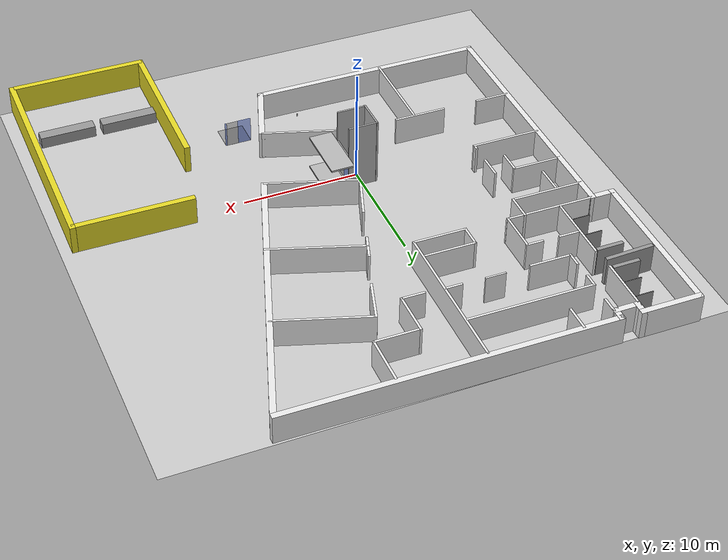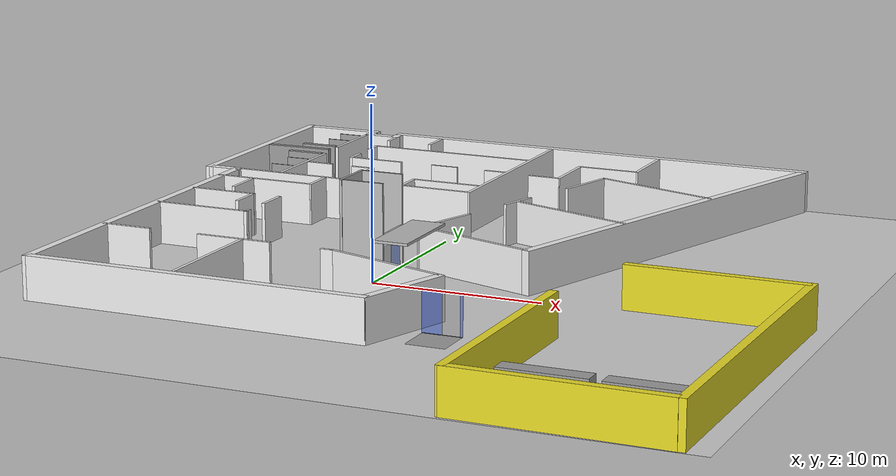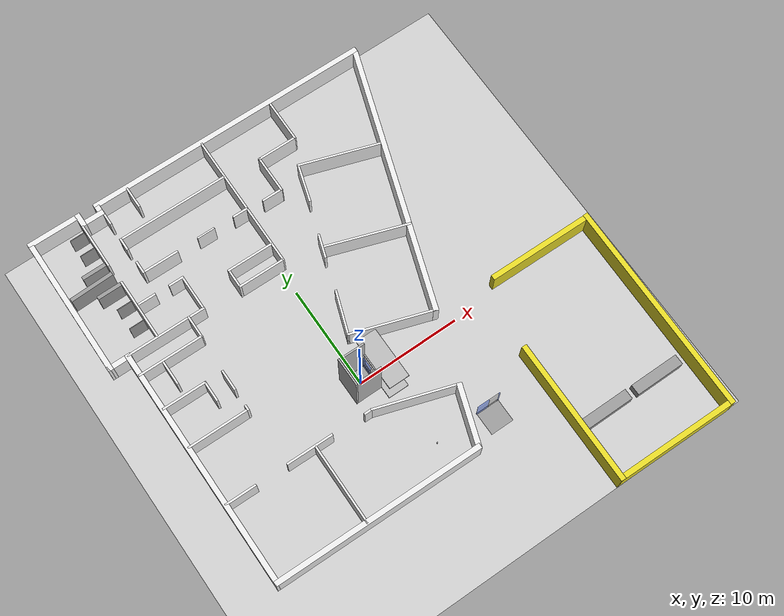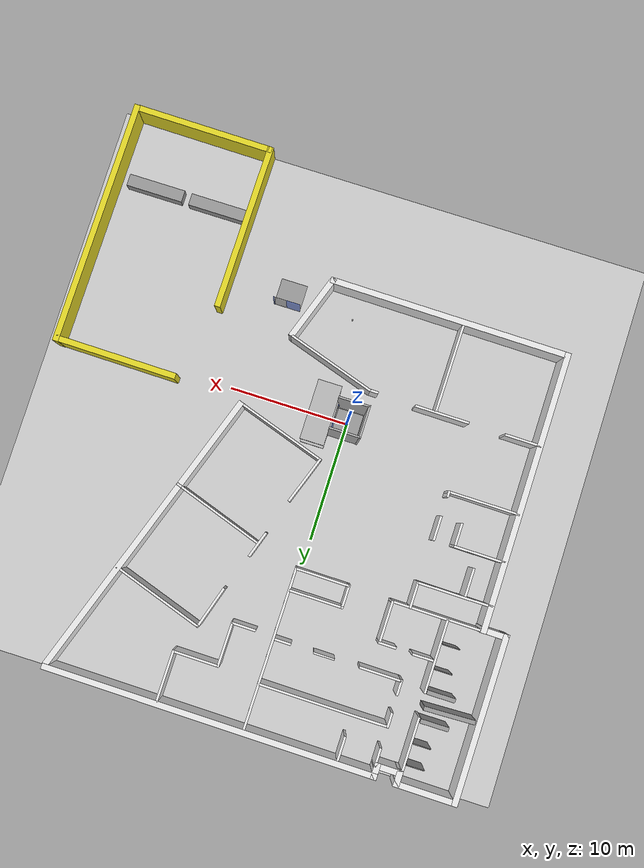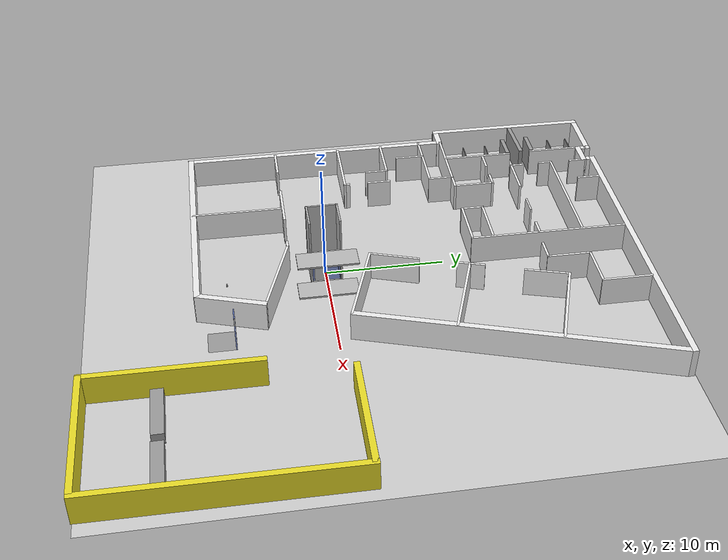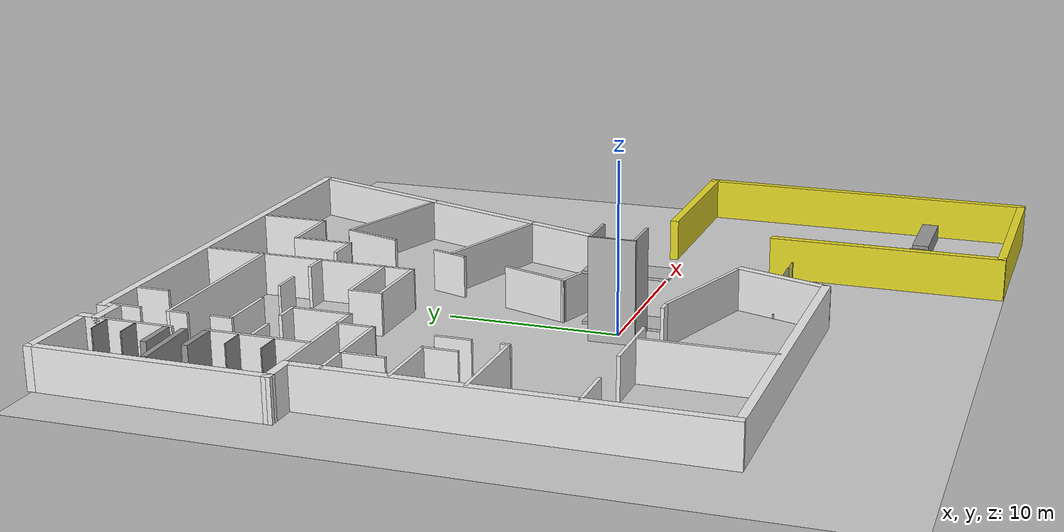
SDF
<sdf version="1.7">
 <world name="default">
  <model name="hospital_wall">
   <pose>3.70516 3.23402 0 0 -0 -1.57977</pose>
   <link name="Wall_0">
    <collision name="Wall_0_Collision">
     <geometry><box><size>27.85 0.5 2.5</size></box></geometry>
     <pose>0 0 1.25 0 -0 0</pose>
    </collision>
    <visual name="Wall_0_Visual">
     <pose>0 0 1.25 0 -0 0</pose>
     <geometry><box><size>27.85 0.5 2.5</size></box></geometry>
     <material>
      <script><uri>file://media/materials/scripts/gazebo.material</uri><name>Gazebo/White</name></script>
      <ambient>1 1 1 1</ambient>
     </material>
     <meta><layer>0</layer></meta>
    </visual>
    <pose>-22.6945 -0.556827 0 0 -0 -1.57078</pose>
   </link>
   <link name="Wall_101">
    <collision name="Wall_101_Collision">
     <geometry><box><size>1.25 0.2 2.5</size></box></geometry>
     <pose>0 0 1.25 0 -0 0</pose>
    </collision>
    <visual name="Wall_101_Visual">
     <pose>0 0 1.25 0 -0 0</pose>
     <geometry><box><size>1.25 0.2 2.5</size></box></geometry>
     <material>
      <script><uri>file://media/materials/scripts/gazebo.material</uri><name>Gazebo/White</name></script>
      <ambient>1 1 1 1</ambient>
     </material>
     <meta><layer>0</layer></meta>
    </visual>
    <pose>-18.1899 -14.0971 0 0 -0 3.14159</pose>
   </link>
   <link name="Wall_103">
    <collision name="Wall_103_Collision">
     <geometry><box><size>1.30009 0.2 2.5</size></box></geometry>
     <pose>0 0 1.25 0 -0 0</pose>
    </collision>
    <visual name="Wall_103_Visual">
     <pose>0 0 1.25 0 -0 0</pose>
     <geometry><box><size>1.30009 0.2 2.5</size></box></geometry>
     <material>
      <script><uri>file://media/materials/scripts/gazebo.material</uri><name>Gazebo/White</name></script>
      <ambient>1 1 1 1</ambient>
     </material>
     <meta><layer>0</layer></meta>
    </visual>
    <pose>-15.5522 -14.0461 0 0 -0 0</pose>
   </link>
   <link name="Wall_105">
    <collision name="Wall_105_Collision">
     <geometry><box><size>3.5 0.2 2.5</size></box></geometry>
     <pose>0 0 1.25 0 -0 0</pose>
    </collision>
    <visual name="Wall_105_Visual">
     <pose>0 0 1.25 0 -0 0</pose>
     <geometry><box><size>3.5 0.2 2.5</size></box></geometry>
     <material>
      <script><uri>file://media/materials/scripts/gazebo.material</uri><name>Gazebo/White</name></script>
      <ambient>1 1 1 1</ambient>
     </material>
     <meta><layer>0</layer></meta>
    </visual>
    <pose>-15.0024 -12.3017 0 0 -0 -1.5708</pose>
   </link>
   <link name="Wall_107">
    <collision name="Wall_107_Collision">
     <geometry><box><size>2.25 0.2 2.5</size></box></geometry>
     <pose>0 0 1.25 0 -0 0</pose>
    </collision>
    <visual name="Wall_107_Visual">
     <pose>0 0 1.25 0 -0 0</pose>
     <geometry><box><size>2.25 0.2 2.5</size></box></geometry>
     <material>
      <script><uri>file://media/materials/scripts/gazebo.material</uri><name>Gazebo/White</name></script>
      <ambient>1 1 1 1</ambient>
     </material>
     <meta><layer>0</layer></meta>
    </visual>
    <pose>-21.5791 -11.151 0 0 -0 3.14159</pose>
   </link>
   <link name="Wall_109">
    <collision name="Wall_109_Collision">
     <geometry><box><size>1.5 0.2 2.5</size></box></geometry>
     <pose>0 0 1.25 0 -0 0</pose>
    </collision>
    <visual name="Wall_109_Visual">
     <pose>0 0 1.25 0 -0 0</pose>
     <geometry><box><size>1.5 0.2 2.5</size></box></geometry>
     <material>
      <script><uri>file://media/materials/scripts/gazebo.material</uri><name>Gazebo/White</name></script>
      <ambient>1 1 1 1</ambient>
     </material>
     <meta><layer>0</layer></meta>
    </visual>
    <pose>-12.697 -12.138 0 0 -0 1.5708</pose>
   </link>
   <link name="Wall_111">
    <collision name="Wall_111_Collision">
     <geometry><box><size>6.05 0.2 2.5</size></box></geometry>
     <pose>0 0 1.25 0 -0 0</pose>
    </collision>
    <visual name="Wall_111_Visual">
     <pose>0 0 1.25 0 -0 0</pose>
     <geometry><box><size>6.05 0.2 2.5</size></box></geometry>
     <material>
      <script><uri>file://media/materials/scripts/gazebo.material</uri><name>Gazebo/White</name></script>
      <ambient>1 1 1 1</ambient>
     </material>
     <meta><layer>0</layer></meta>
    </visual>
    <pose>-12.3324 -16.088 0 0 -0 0</pose>
   </link>
   <link name="Wall_113">
    <collision name="Wall_113_Collision">
     <geometry><box><size>1.75 0.2 2.5</size></box></geometry>
     <pose>0 0 1.25 0 -0 0</pose>
    </collision>
    <visual name="Wall_113_Visual">
     <pose>0 0 1.25 0 -0 0</pose>
     <geometry><box><size>1.75 0.2 2.5</size></box></geometry>
     <material>
      <script><uri>file://media/materials/scripts/gazebo.material</uri><name>Gazebo/White</name></script>
      <ambient>1 1 1 1</ambient>
     </material>
     <meta><layer>0</layer></meta>
    </visual>
    <pose>-12.7232 -15.1011 0 0 -0 -1.5708</pose>
   </link>
   <link name="Wall_115">
    <collision name="Wall_115_Collision">
     <geometry><box><size>4.5 0.2 2.5</size></box></geometry>
     <pose>0 0 1.25 0 -0 0</pose>
    </collision>
    <visual name="Wall_115_Visual">
     <pose>0 0 1.25 0 -0 0</pose>
     <geometry><box><size>4.5 0.2 2.5</size></box></geometry>
     <material>
      <script><uri>file://media/materials/scripts/gazebo.material</uri><name>Gazebo/White</name></script>
      <ambient>1 1 1 1</ambient>
     </material>
     <meta><layer>0</layer></meta>
    </visual>
    <pose>-10.9872 -5.67707 0 0 -0 1.5708</pose>
   </link>
   <link name="Wall_117">
    <collision name="Wall_117_Collision">
     <geometry><box><size>4.5 0.2 2.5</size></box></geometry>
     <pose>0 0 1.25 0 -0 0</pose>
    </collision>
    <visual name="Wall_117_Visual">
     <pose>0 0 1.25 0 -0 0</pose>
     <geometry><box><size>4.5 0.2 2.5</size></box></geometry>
     <material>
      <script><uri>file://media/materials/scripts/gazebo.material</uri><name>Gazebo/White</name></script>
      <ambient>1 1 1 1</ambient>
     </material>
     <meta><layer>0</layer></meta>
    </visual>
    <pose>-9.1948 -5.67532 0 0 -0 1.5708</pose>
   </link>
   <link name="Wall_12">
    <collision name="Wall_12_Collision">
     <geometry><box><size>14 0.5 2.5</size></box></geometry>
     <pose>0 0 1.25 0 -0 0</pose>
    </collision>
    <visual name="Wall_12_Visual">
     <pose>0 0 1.25 0 -0 0</pose>
     <geometry><box><size>14 0.5 2.5</size></box></geometry>
     <material>
      <script><uri>file://media/materials/scripts/gazebo.material</uri><name>Gazebo/White</name></script>
      <ambient>1 1 1 1</ambient>
     </material>
     <meta><layer>0</layer></meta>
    </visual>
    <pose>-15.9442 -20.8921 0 0 -0 0</pose>
   </link>
   <link name="Wall_120">
    <collision name="Wall_120_Collision">
     <geometry><box><size>2 0.2 2.5</size></box></geometry>
     <pose>0 0 1.25 0 -0 0</pose>
    </collision>
    <visual name="Wall_120_Visual">
     <pose>0 0 1.25 0 -0 0</pose>
     <geometry><box><size>2 0.2 2.5</size></box></geometry>
     <material>
      <script><uri>file://media/materials/scripts/gazebo.material</uri><name>Gazebo/White</name></script>
      <ambient>1 1 1 1</ambient>
     </material>
     <meta><layer>0</layer></meta>
    </visual>
    <pose>-10.0892 -7.82789 0 0 -0 0</pose>
   </link>
   <link name="Wall_122">
    <collision name="Wall_122_Collision">
     <geometry><box><size>2.5 0.2 2.5</size></box></geometry>
     <pose>0 0 1.25 0 -0 0</pose>
    </collision>
    <visual name="Wall_122_Visual">
     <pose>0 0 1.25 0 -0 0</pose>
     <geometry><box><size>2.5 0.2 2.5</size></box></geometry>
     <material>
      <script><uri>file://media/materials/scripts/gazebo.material</uri><name>Gazebo/White</name></script>
      <ambient>1 1 1 1</ambient>
     </material>
     <meta><layer>0</layer></meta>
    </visual>
    <pose>-6.02163 -16.8589 0 0 -0 3.14159</pose>
   </link>
   <link name="Wall_124">
    <collision name="Wall_124_Collision">
     <geometry><box><size>4.30001 0.2 2.5</size></box></geometry>
     <pose>0 0 1.25 0 -0 0</pose>
    </collision>
    <visual name="Wall_124_Visual">
     <pose>0 0 1.25 0 -0 0</pose>
     <geometry><box><size>4.30001 0.2 2.5</size></box></geometry>
     <material>
      <script><uri>file://media/materials/scripts/gazebo.material</uri><name>Gazebo/White</name></script>
      <ambient>1 1 1 1</ambient>
     </material>
     <meta><layer>0</layer></meta>
    </visual>
    <pose>-3.60823 -16.9331 0 0 -0 -1.5708</pose>
   </link>
   <link name="Wall_126">
    <collision name="Wall_126_Collision">
     <geometry><box><size>2 0.2 2.5</size></box></geometry>
     <pose>0 0 1.25 0 -0 0</pose>
    </collision>
    <visual name="Wall_126_Visual">
     <pose>0 0 1.25 0 -0 0</pose>
     <geometry><box><size>2 0.2 2.5</size></box></geometry>
     <material>
      <script><uri>file://media/materials/scripts/gazebo.material</uri><name>Gazebo/White</name></script>
      <ambient>1 1 1 1</ambient>
     </material>
     <meta><layer>0</layer></meta>
    </visual>
    <pose>-2.64995 -14.8874 0 0 -0 3.14159</pose>
   </link>
   <link name="Wall_128">
    <collision name="Wall_128_Collision">
     <geometry><box><size>0.55 0.2 2.5</size></box></geometry>
     <pose>0 0 1.25 0 -0 0</pose>
    </collision>
    <visual name="Wall_128_Visual">
     <pose>0 0 1.25 0 -0 0</pose>
     <geometry><box><size>0.55 0.2 2.5</size></box></geometry>
     <material>
      <script><uri>file://media/materials/scripts/gazebo.material</uri><name>Gazebo/White</name></script>
      <ambient>1 1 1 1</ambient>
     </material>
     <meta><layer>0</layer></meta>
    </visual>
    <pose>0.233926 -13.1551 0 0 -0 0</pose>
   </link>
   <link name="Wall_130">
    <collision name="Wall_130_Collision">
     <geometry><box><size>6 0.2 2.5</size></box></geometry>
     <pose>0 0 1.25 0 -0 0</pose>
    </collision>
    <visual name="Wall_130_Visual">
     <pose>0 0 1.25 0 -0 0</pose>
     <geometry><box><size>6 0.2 2.5</size></box></geometry>
     <material>
      <script><uri>file://media/materials/scripts/gazebo.material</uri><name>Gazebo/White</name></script>
      <ambient>1 1 1 1</ambient>
     </material>
     <meta><layer>0</layer></meta>
    </visual>
    <pose>0.407767 -16.0541 0 0 -0 1.5708</pose>
   </link>
   <link name="Wall_132">
    <collision name="Wall_132_Collision">
     <geometry><box><size>4.25 0.2 2.5</size></box></geometry>
     <pose>0 0 1.25 0 -0 0</pose>
    </collision>
    <visual name="Wall_132_Visual">
     <pose>0 0 1.25 0 -0 0</pose>
     <geometry><box><size>4.25 0.2 2.5</size></box></geometry>
     <material>
      <script><uri>file://media/materials/scripts/gazebo.material</uri><name>Gazebo/White</name></script>
      <ambient>1 1 1 1</ambient>
     </material>
     <meta><layer>0</layer></meta>
    </visual>
    <pose>-20.4132 3.82393 0 0 -0 0</pose>
   </link>
   <link name="Wall_134">
    <collision name="Wall_134_Collision">
     <geometry><box><size>3.75 0.2 2.5</size></box></geometry>
     <pose>0 0 1.25 0 -0 0</pose>
    </collision>
    <visual name="Wall_134_Visual">
     <pose>0 0 1.25 0 -0 0</pose>
     <geometry><box><size>3.75 0.2 2.5</size></box></geometry>
     <material>
      <script><uri>file://media/materials/scripts/gazebo.material</uri><name>Gazebo/White</name></script>
      <ambient>1 1 1 1</ambient>
     </material>
     <meta><layer>0</layer></meta>
    </visual>
    <pose>-18.387 1.94161 0 0 -0 1.5708</pose>
   </link>
   <link name="Wall_136">
    <collision name="Wall_136_Collision">
     <geometry><box><size>3.75 0.2 2.5</size></box></geometry>
     <pose>0 0 1.25 0 -0 0</pose>
    </collision>
    <visual name="Wall_136_Visual">
     <pose>0 0 1.25 0 -0 0</pose>
     <geometry><box><size>3.75 0.2 2.5</size></box></geometry>
     <material>
      <script><uri>file://media/materials/scripts/gazebo.material</uri><name>Gazebo/White</name></script>
      <ambient>1 1 1 1</ambient>
     </material>
     <meta><layer>0</layer></meta>
    </visual>
    <pose>-16.6135 0.087292 0 0 -0 3.14159</pose>
   </link>
   <link name="Wall_138">
    <collision name="Wall_138_Collision">
     <geometry><box><size>2 0.2 2.5</size></box></geometry>
     <pose>0 0 1.25 0 -0 0</pose>
    </collision>
    <visual name="Wall_138_Visual">
     <pose>0 0 1.25 0 -0 0</pose>
     <geometry><box><size>2 0.2 2.5</size></box></geometry>
     <material>
      <script><uri>file://media/materials/scripts/gazebo.material</uri><name>Gazebo/White</name></script>
      <ambient>1 1 1 1</ambient>
     </material>
     <meta><layer>0</layer></meta>
    </visual>
    <pose>-14.8374 -0.881729 0 0 -0 1.5708</pose>
   </link>
   <link name="Wall_15">
    <collision name="Wall_15_Collision">
     <geometry><box><size>2.3504 0.5 2.5</size></box></geometry>
     <pose>0 0 1.25 0 -0 0</pose>
    </collision>
    <visual name="Wall_15_Visual">
     <pose>0 0 1.25 0 -0 0</pose>
     <geometry><box><size>2.3504 0.5 2.5</size></box></geometry>
     <material>
      <script><uri>file://media/materials/scripts/gazebo.material</uri><name>Gazebo/White</name></script>
      <ambient>1 1 1 1</ambient>
     </material>
     <meta><layer>0</layer></meta>
    </visual>
    <pose>-9.19703 -19.9669 0 0 -0 1.57382</pose>
   </link>
   <link name="Wall_17">
    <collision name="Wall_17_Collision">
     <geometry><box><size>23.6058 0.5 2.5</size></box></geometry>
     <pose>0 0 1.25 0 -0 0</pose>
    </collision>
    <visual name="Wall_17_Visual">
     <pose>0 0 1.25 0 -0 0</pose>
     <geometry><box><size>23.6058 0.5 2.5</size></box></geometry>
     <material>
      <script><uri>file://media/materials/scripts/gazebo.material</uri><name>Gazebo/White</name></script>
      <ambient>1 1 1 1</ambient>
     </material>
     <meta><layer>0</layer></meta>
    </visual>
    <pose>2.35297 -19.0214 0 0 -0 0.004195</pose>
   </link>
   <link name="Wall_19">
    <collision name="Wall_19_Collision">
     <geometry><box><size>20.4027 0.5 2.5</size></box></geometry>
     <pose>0 0 1.25 0 -0 0</pose>
    </collision>
    <visual name="Wall_19_Visual">
     <pose>0 0 1.25 0 -0 0</pose>
     <geometry><box><size>20.4027 0.5 2.5</size></box></geometry>
     <material>
      <script><uri>file://media/materials/scripts/gazebo.material</uri><name>Gazebo/White</name></script>
      <ambient>1 1 1 1</ambient>
     </material>
     <meta><layer>0</layer></meta>
    </visual>
    <pose>13.9058 -8.99341 0 0 -0 1.5708</pose>
   </link>
   <link name="Wall_2">
    <collision name="Wall_2_Collision">
     <geometry><box><size>1.34953 0.5 2.5</size></box></geometry>
     <pose>0 0 1.25 0 -0 0</pose>
    </collision>
    <visual name="Wall_2_Visual">
     <pose>0 0 1.25 0 -0 0</pose>
     <geometry><box><size>1.34953 0.5 2.5</size></box></geometry>
     <material>
      <script><uri>file://media/materials/scripts/gazebo.material</uri><name>Gazebo/White</name></script>
      <ambient>1 1 1 1</ambient>
     </material>
     <meta><layer>0</layer></meta>
    </visual>
    <pose>-22.2692 -14.2321 0 0 -0 0</pose>
   </link>
   <link name="Wall_21">
    <collision name="Wall_21_Collision">
     <geometry><box><size>25.994 0.5 2.5</size></box></geometry>
     <pose>0 0 1.25 0 -0 0</pose>
    </collision>
    <visual name="Wall_21_Visual">
     <pose>0 0 1.25 0 -0 0</pose>
     <geometry><box><size>25.994 0.5 2.5</size></box></geometry>
     <material>
      <script><uri>file://media/materials/scripts/gazebo.material</uri><name>Gazebo/White</name></script>
      <ambient>1 1 1 1</ambient>
     </material>
     <meta><layer>0</layer></meta>
    </visual>
    <pose>-10.1882 9.03243 0 0 -0 -0.321217</pose>
   </link>
   <link name="Wall_23">
    <collision name="Wall_23_Collision">
     <geometry><box><size>5.92015 0.5 2.5</size></box></geometry>
     <pose>0 0 1.25 0 -0 0</pose>
    </collision>
    <visual name="Wall_23_Visual">
     <pose>0 0 1.25 0 -0 0</pose>
     <geometry><box><size>5.92015 0.5 2.5</size></box></geometry>
     <material>
      <script><uri>file://media/materials/scripts/gazebo.material</uri><name>Gazebo/White</name></script>
      <ambient>1 1 1 1</ambient>
     </material>
     <meta><layer>0</layer></meta>
    </visual>
    <pose>11.2768 1.89793 0 0 -0 -0.322917</pose>
   </link>
   <link name="Wall_25">
    <collision name="Wall_25_Collision">
     <geometry><box><size>10.25 0.5 2.5</size></box></geometry>
     <pose>0 0 1.25 0 -0 0</pose>
    </collision>
    <visual name="Wall_25_Visual">
     <pose>0 0 1.25 0 -0 0</pose>
     <geometry><box><size>10.25 0.5 2.5</size></box></geometry>
     <material>
      <script><uri>file://media/materials/scripts/gazebo.material</uri><name>Gazebo/Yellow</name></script>
      <ambient>1 1 1 1</ambient>
     </material>
     <meta><layer>0</layer></meta>
    </visual>
    <pose>2.44213 15.8139 0 0 -0 1.5708</pose>
   </link>
   <link name="Wall_29">
    <collision name="Wall_29_Collision">
     <geometry><box><size>14 0.5 2.5</size></box></geometry>
     <pose>0 0 1.25 0 -0 0</pose>
    </collision>
    <visual name="Wall_29_Visual">
     <pose>0 0 1.25 0 -0 0</pose>
     <geometry><box><size>14 0.5 2.5</size></box></geometry>
     <material>
      <script><uri>file://media/materials/scripts/gazebo.material</uri><name>Gazebo/Yellow</name></script>
      <ambient>1 1 1 1</ambient>
     </material>
     <meta><layer>0</layer></meta>
    </visual>
    <pose>15.9259 9.2975 0 0 -0 0</pose>
   </link>
   <link name="Wall_31">
    <collision name="Wall_31_Collision">
     <geometry><box><size>11.6 0.5 2.5</size></box></geometry>
     <pose>0 0 1.25 0 -0 0</pose>
    </collision>
    <visual name="Wall_31_Visual">
     <pose>0 0 1.25 0 -0 0</pose>
     <geometry><box><size>11.6 0.5 2.5</size></box></geometry>
     <material>
      <script><uri>file://media/materials/scripts/gazebo.material</uri><name>Gazebo/Yellow</name></script>
      <ambient>1 1 1 1</ambient>
     </material>
     <meta><layer>0</layer></meta>
    </visual>
    <pose>22.6947 14.9589 0 0 -0 1.5708</pose>
   </link>
   <link name="Wall_33">
    <collision name="Wall_33_Collision">
     <geometry><box><size>20.75 0.5 2.5</size></box></geometry>
     <pose>0 0 1.25 0 -0 0</pose>
    </collision>
    <visual name="Wall_33_Visual">
     <pose>0 0 1.25 0 -0 0</pose>
     <geometry><box><size>20.75 0.5 2.5</size></box></geometry>
     <material>
      <script><uri>file://media/materials/scripts/gazebo.material</uri><name>Gazebo/Yellow</name></script>
      <ambient>1 1 1 1</ambient>
     </material>
     <meta><layer>0</layer></meta>
    </visual>
    <pose>12.5443 20.8928 0 0 -0 3.14159</pose>
   </link>
   <link name="Wall_36">
    <collision name="Wall_36_Collision">
     <geometry><box><size>8.02379 0.2 2.5</size></box></geometry>
     <pose>0 0 1.25 0 -0 0</pose>
    </collision>
    <visual name="Wall_36_Visual">
     <pose>0 0 1.25 0 -0 0</pose>
     <geometry><box><size>8.02379 0.2 2.5</size></box></geometry>
     <material>
      <script><uri>file://media/materials/scripts/gazebo.material</uri><name>Gazebo/White</name></script>
      <ambient>1 1 1 1</ambient>
     </material>
     <meta><layer>0</layer></meta>
    </visual>
    <pose>0.840579 1.20633 0 0 -0 1.26174</pose>
   </link>
   <link name="Wall_38">
    <collision name="Wall_38_Collision">
     <geometry><box><size>7.84014 0.2 2.5</size></box></geometry>
     <pose>0 0 1.25 0 -0 0</pose>
    </collision>
    <visual name="Wall_38_Visual">
     <pose>0 0 1.25 0 -0 0</pose>
     <geometry><box><size>7.84014 0.2 2.5</size></box></geometry>
     <material>
      <script><uri>file://media/materials/scripts/gazebo.material</uri><name>Gazebo/White</name></script>
      <ambient>1 1 1 1</ambient>
     </material>
     <meta><layer>0</layer></meta>
    </visual>
    <pose>7.39677 -0.912771 0 0 -0 1.26775</pose>
   </link>
   <link name="Wall_40">
    <collision name="Wall_40_Collision">
     <geometry><box><size>0.75 0.2 2.5</size></box></geometry>
     <pose>0 0 1.25 0 -0 0</pose>
    </collision>
    <visual name="Wall_40_Visual">
     <pose>0 0 1.25 0 -0 0</pose>
     <geometry><box><size>0.75 0.2 2.5</size></box></geometry>
     <material>
      <script><uri>file://media/materials/scripts/gazebo.material</uri><name>Gazebo/White</name></script>
      <ambient>1 1 1 1</ambient>
     </material>
     <meta><layer>0</layer></meta>
    </visual>
    <pose>6.25677 -4.94668 0 0 -0 1.5708</pose>
   </link>
   <link name="Wall_42">
    <collision name="Wall_42_Collision">
     <geometry><box><size>4.54982 0.2 2.5</size></box></geometry>
     <pose>0 0 1.25 0 -0 0</pose>
    </collision>
    <visual name="Wall_42_Visual">
     <pose>0 0 1.25 0 -0 0</pose>
     <geometry><box><size>4.54982 0.2 2.5</size></box></geometry>
     <material>
      <script><uri>file://media/materials/scripts/gazebo.material</uri><name>Gazebo/White</name></script>
      <ambient>1 1 1 1</ambient>
     </material>
     <meta><layer>0</layer></meta>
    </visual>
    <pose>6.18977 -10.7381 0 0 -0 -1.5708</pose>
   </link>
   <link name="Wall_45">
    <collision name="Wall_45_Collision">
     <geometry><box><size>3.05045 0.2 2.5</size></box></geometry>
     <pose>0 0 1.25 0 -0 0</pose>
    </collision>
    <visual name="Wall_45_Visual">
     <pose>0 0 1.25 0 -0 0</pose>
     <geometry><box><size>3.05045 0.2 2.5</size></box></geometry>
     <material>
      <script><uri>file://media/materials/scripts/gazebo.material</uri><name>Gazebo/White</name></script>
      <ambient>1 1 1 1</ambient>
     </material>
     <meta><layer>0</layer></meta>
    </visual>
    <pose>6.19877 -17.5651 0 0 -0 -1.5708</pose>
   </link>
   <link name="Wall_47">
    <collision name="Wall_47_Collision">
     <geometry><box><size>7.79995 0.2 2.5</size></box></geometry>
     <pose>0 0 1.25 0 -0 0</pose>
    </collision>
    <visual name="Wall_47_Visual">
     <pose>0 0 1.25 0 -0 0</pose>
     <geometry><box><size>7.79995 0.2 2.5</size></box></geometry>
     <material>
      <script><uri>file://media/materials/scripts/gazebo.material</uri><name>Gazebo/White</name></script>
      <ambient>1 1 1 1</ambient>
     </material>
     <meta><layer>0</layer></meta>
    </visual>
    <pose>10.1328 -10.2061 0 0 -0 0</pose>
   </link>
   <link name="Wall_5">
    <collision name="Wall_5_Collision">
     <geometry><box><size>2.35 0.5 2.5</size></box></geometry>
     <pose>0 0 1.25 0 -0 0</pose>
    </collision>
    <visual name="Wall_5_Visual">
     <pose>0 0 1.25 0 -0 0</pose>
     <geometry><box><size>2.35 0.5 2.5</size></box></geometry>
     <material>
      <script><uri>file://media/materials/scripts/gazebo.material</uri><name>Gazebo/White</name></script>
      <ambient>1 1 1 1</ambient>
     </material>
     <meta><layer>0</layer></meta>
    </visual>
    <pose>-21.8442 -15.1571 0 0 -0 -1.5708</pose>
   </link>
   <link name="Wall_58">
    <collision name="Wall_58_Collision">
     <geometry><box><size>4.27097 0.2 2.5</size></box></geometry>
     <pose>0 0 1.25 0 -0 0</pose>
    </collision>
    <visual name="Wall_58_Visual">
     <pose>0 0 1.25 0 -0 0</pose>
     <geometry><box><size>4.27097 0.2 2.5</size></box></geometry>
     <material>
      <script><uri>file://media/materials/scripts/gazebo.material</uri><name>Gazebo/White</name></script>
      <ambient>1 1 1 1</ambient>
     </material>
     <meta><layer>0</layer></meta>
    </visual>
    <pose>-2.27423 -1.85857 0 0 -0 -0.330994</pose>
   </link>
   <link name="Wall_60">
    <collision name="Wall_60_Collision">
     <geometry><box><size>2.33146 0.2 2.5</size></box></geometry>
     <pose>0 0 1.25 0 -0 0</pose>
    </collision>
    <visual name="Wall_60_Visual">
     <pose>0 0 1.25 0 -0 0</pose>
     <geometry><box><size>2.33146 0.2 2.5</size></box></geometry>
     <material>
      <script><uri>file://media/materials/scripts/gazebo.material</uri><name>Gazebo/White</name></script>
      <ambient>1 1 1 1</ambient>
     </material>
     <meta><layer>0</layer></meta>
    </visual>
    <pose>-8.34323 0.115928 0 0 -0 -0.312849</pose>
   </link>
   <link name="Wall_65">
    <collision name="Wall_65_Collision">
     <geometry><box><size>8.18103 0.2 2.5</size></box></geometry>
     <pose>0 0 1.25 0 -0 0</pose>
    </collision>
    <visual name="Wall_65_Visual">
     <pose>0 0 1.25 0 -0 0</pose>
     <geometry><box><size>8.18103 0.2 2.5</size></box></geometry>
     <material>
      <script><uri>file://media/materials/scripts/gazebo.material</uri><name>Gazebo/White</name></script>
      <ambient>1 1 1 1</ambient>
     </material>
     <meta><layer>0</layer></meta>
    </visual>
    <pose>-6.99923 3.88693 0 0 -0 1.25325</pose>
   </link>
   <link name="Wall_68">
    <collision name="Wall_68_Collision">
     <geometry><box><size>8.11404 0.2 2.5</size></box></geometry>
     <pose>0 0 1.25 0 -0 0</pose>
    </collision>
    <visual name="Wall_68_Visual">
     <pose>0 0 1.25 0 -0 0</pose>
     <geometry><box><size>8.11404 0.2 2.5</size></box></geometry>
     <material>
      <script><uri>file://media/materials/scripts/gazebo.material</uri><name>Gazebo/White</name></script>
      <ambient>1 1 1 1</ambient>
     </material>
     <meta><layer>0</layer></meta>
    </visual>
    <pose>-14.7317 6.38193 0 0 -0 1.25964</pose>
   </link>
   <link name="Wall_7">
    <collision name="Wall_7_Collision">
     <geometry><box><size>1.35 0.5 2.5</size></box></geometry>
     <pose>0 0 1.25 0 -0 0</pose>
    </collision>
    <visual name="Wall_7_Visual">
     <pose>0 0 1.25 0 -0 0</pose>
     <geometry><box><size>1.35 0.5 2.5</size></box></geometry>
     <material>
      <script><uri>file://media/materials/scripts/gazebo.material</uri><name>Gazebo/White</name></script>
      <ambient>1 1 1 1</ambient>
     </material>
     <meta><layer>0</layer></meta>
    </visual>
    <pose>-22.2692 -16.0821 0 0 -0 3.14159</pose>
   </link>
   <link name="Wall_70">
    <collision name="Wall_70_Collision">
     <geometry><box><size>3.72528 0.2 2.5</size></box></geometry>
     <pose>0 0 1.25 0 -0 0</pose>
    </collision>
    <visual name="Wall_70_Visual">
     <pose>0 0 1.25 0 -0 0</pose>
     <geometry><box><size>3.72528 0.2 2.5</size></box></geometry>
     <material>
      <script><uri>file://media/materials/scripts/gazebo.material</uri><name>Gazebo/White</name></script>
      <ambient>1 1 1 1</ambient>
     </material>
     <meta><layer>0</layer></meta>
    </visual>
    <pose>-14.2362 2.09543 0 0 -0 -0.292055</pose>
   </link>
   <link name="Wall_72">
    <collision name="Wall_72_Collision">
     <geometry><box><size>6.25 0.2 2.5</size></box></geometry>
     <pose>0 0 1.25 0 -0 0</pose>
    </collision>
    <visual name="Wall_72_Visual">
     <pose>0 0 1.25 0 -0 0</pose>
     <geometry><box><size>6.25 0.2 2.5</size></box></geometry>
     <material>
      <script><uri>file://media/materials/scripts/gazebo.material</uri><name>Gazebo/White</name></script>
      <ambient>1 1 1 1</ambient>
     </material>
     <meta><layer>0</layer></meta>
    </visual>
    <pose>-7.24323 -16.0931 0 0 -0 -1.5708</pose>
   </link>
   <link name="Wall_77">
    <collision name="Wall_77_Collision">
     <geometry><box><size>6.25 0.2 2.5</size></box></geometry>
     <pose>0 0 1.25 0 -0 0</pose>
    </collision>
    <visual name="Wall_77_Visual">
     <pose>0 0 1.25 0 -0 0</pose>
     <geometry><box><size>6.25 0.2 2.5</size></box></geometry>
     <material>
      <script><uri>file://media/materials/scripts/gazebo.material</uri><name>Gazebo/White</name></script>
      <ambient>1 1 1 1</ambient>
     </material>
     <meta><layer>0</layer></meta>
    </visual>
    <pose>-9.29023 -16.0101 0 0 -0 1.5708</pose>
   </link>
   <link name="Wall_81">
    <collision name="Wall_81_Collision">
     <geometry><box><size>2.25 0.2 2.5</size></box></geometry>
     <pose>0 0 1.25 0 -0 0</pose>
    </collision>
    <visual name="Wall_81_Visual">
     <pose>0 0 1.25 0 -0 0</pose>
     <geometry><box><size>2.25 0.2 2.5</size></box></geometry>
     <material>
      <script><uri>file://media/materials/scripts/gazebo.material</uri><name>Gazebo/White</name></script>
      <ambient>1 1 1 1</ambient>
     </material>
     <meta><layer>0</layer></meta>
    </visual>
    <pose>-8.2697 -12.9678 0 0 -0 0</pose>
   </link>
   <link name="Wall_83">
    <collision name="Wall_83_Collision">
     <geometry><box><size>2.04976 0.2 2.5</size></box></geometry>
     <pose>0 0 1.25 0 -0 0</pose>
    </collision>
    <visual name="Wall_83_Visual">
     <pose>0 0 1.25 0 -0 0</pose>
     <geometry><box><size>2.04976 0.2 2.5</size></box></geometry>
     <material>
      <script><uri>file://media/materials/scripts/gazebo.material</uri><name>Gazebo/White</name></script>
      <ambient>1 1 1 1</ambient>
     </material>
     <meta><layer>0</layer></meta>
    </visual>
    <pose>-2.65423 -13.1321 0 0 -0 0</pose>
   </link>
   <link name="Wall_85">
    <collision name="Wall_85_Collision">
     <geometry><box><size>1.55 0.2 2.5</size></box></geometry>
     <pose>0 0 1.25 0 -0 0</pose>
    </collision>
    <visual name="Wall_85_Visual">
     <pose>0 0 1.25 0 -0 0</pose>
     <geometry><box><size>1.55 0.2 2.5</size></box></geometry>
     <material>
      <script><uri>file://media/materials/scripts/gazebo.material</uri><name>Gazebo/White</name></script>
      <ambient>1 1 1 1</ambient>
     </material>
     <meta><layer>0</layer></meta>
    </visual>
    <pose>-9.28482 -12.1541 0 0 -0 -1.5708</pose>
   </link>
   <link name="Wall_87">
    <collision name="Wall_87_Collision">
     <geometry><box><size>3.5 0.2 2.5</size></box></geometry>
     <pose>0 0 1.25 0 -0 0</pose>
    </collision>
    <visual name="Wall_87_Visual">
     <pose>0 0 1.25 0 -0 0</pose>
     <geometry><box><size>3.5 0.2 2.5</size></box></geometry>
     <material>
      <script><uri>file://media/materials/scripts/gazebo.material</uri><name>Gazebo/White</name></script>
      <ambient>1 1 1 1</ambient>
     </material>
     <meta><layer>0</layer></meta>
    </visual>
    <pose>-10.9541 -11.492 0 0 -0 0</pose>
   </link>
   <link name="Wall_89">
    <collision name="Wall_89_Collision">
     <geometry><box><size>4.5 0.2 2.5</size></box></geometry>
     <pose>0 0 1.25 0 -0 0</pose>
    </collision>
    <visual name="Wall_89_Visual">
     <pose>0 0 1.25 0 -0 0</pose>
     <geometry><box><size>4.5 0.2 2.5</size></box></geometry>
     <material>
      <script><uri>file://media/materials/scripts/gazebo.material</uri><name>Gazebo/White</name></script>
      <ambient>1 1 1 1</ambient>
     </material>
     <meta><layer>0</layer></meta>
    </visual>
    <pose>-19.4706 -16.2291 0 0 -0 0</pose>
   </link>
   <link name="Wall_9">
    <collision name="Wall_9_Collision">
     <geometry><box><size>5.31023 0.5 2.5</size></box></geometry>
     <pose>0 0 1.25 0 -0 0</pose>
    </collision>
    <visual name="Wall_9_Visual">
     <pose>0 0 1.25 0 -0 0</pose>
     <geometry><box><size>5.31023 0.5 2.5</size></box></geometry>
     <material>
      <script><uri>file://media/materials/scripts/gazebo.material</uri><name>Gazebo/White</name></script>
      <ambient>1 1 1 1</ambient>
     </material>
     <meta><layer>0</layer></meta>
    </visual>
    <pose>-22.6942 -18.4871 0 0 -0 -1.5708</pose>
   </link>
   <link name="Wall_91">
    <collision name="Wall_91_Collision">
     <geometry><box><size>13.5 0.2 2.5</size></box></geometry>
     <pose>0 0 1.25 0 -0 0</pose>
    </collision>
    <visual name="Wall_91_Visual">
     <pose>0 0 1.25 0 -0 0</pose>
     <geometry><box><size>13.5 0.2 2.5</size></box></geometry>
     <material>
      <script><uri>file://media/materials/scripts/gazebo.material</uri><name>Gazebo/White</name></script>
      <ambient>1 1 1 1</ambient>
     </material>
     <meta><layer>0</layer></meta>
    </visual>
    <pose>-15.8452 -3.39907 0 0 -0 0</pose>
   </link>
   <link name="Wall_93">
    <collision name="Wall_93_Collision">
     <geometry><box><size>1.5 0.2 2.5</size></box></geometry>
     <pose>0 0 1.25 0 -0 0</pose>
    </collision>
    <visual name="Wall_93_Visual">
     <pose>0 0 1.25 0 -0 0</pose>
     <geometry><box><size>1.5 0.2 2.5</size></box></geometry>
     <material>
      <script><uri>file://media/materials/scripts/gazebo.material</uri><name>Gazebo/White</name></script>
      <ambient>1 1 1 1</ambient>
     </material>
     <meta><layer>0</layer></meta>
    </visual>
    <pose>-14.9992 -4.12907 0 0 -0 1.5708</pose>
   </link>
   <link name="Wall_95">
    <collision name="Wall_95_Collision">
     <geometry><box><size>1.75 0.15 2.5</size></box></geometry>
     <pose>0 0 1.25 0 -0 0</pose>
    </collision>
    <visual name="Wall_95_Visual">
     <pose>0 0 1.25 0 -0 0</pose>
     <geometry><box><size>1.75 0.15 2.5</size></box></geometry>
     <material>
      <script><uri>file://media/materials/scripts/gazebo.material</uri><name>Gazebo/White</name></script>
      <ambient>1 1 1 1</ambient>
     </material>
     <meta><layer>0</layer></meta>
    </visual>
    <pose>-15.0568 -7.62987 0 0 -0 -1.5708</pose>
   </link>
   <link name="Wall_97">
    <collision name="Wall_97_Collision">
     <geometry><box><size>10.75 0.2 2.5</size></box></geometry>
     <pose>0 0 1.25 0 -0 0</pose>
    </collision>
    <visual name="Wall_97_Visual">
     <pose>0 0 1.25 0 -0 0</pose>
     <geometry><box><size>10.75 0.2 2.5</size></box></geometry>
     <material>
      <script><uri>file://media/materials/scripts/gazebo.material</uri><name>Gazebo/White</name></script>
      <ambient>1 1 1 1</ambient>
     </material>
     <meta><layer>0</layer></meta>
    </visual>
    <pose>-18.7202 -8.82507 0 0 -0 -1.5708</pose>
   </link>
   <link name="Wall_99">
    <collision name="Wall_99_Collision">
     <geometry><box><size>1.5 0.2 2.5</size></box></geometry>
     <pose>0 0 1.25 0 -0 0</pose>
    </collision>
    <visual name="Wall_99_Visual">
     <pose>0 0 1.25 0 -0 0</pose>
     <geometry><box><size>1.5 0.2 2.5</size></box></geometry>
     <material>
      <script><uri>file://media/materials/scripts/gazebo.material</uri><name>Gazebo/White</name></script>
      <ambient>1 1 1 1</ambient>
     </material>
     <meta><layer>0</layer></meta>
    </visual>
    <pose>-21.1918 -14.0784 0 0 -0 3.14159</pose>
   </link>
   <static>1</static>
  </model>
  <model name="my_ground_plane">
   <static>1</static>
   <link name="link">
    <collision name="collision">
     <geometry><plane><normal>0 0 1</normal><size>6 6</size></plane></geometry>
     <surface><friction><ode><mu2>1</mu2><mu1>1</mu1></ode></friction></surface>
    </collision>
    <visual name="visual">
     <geometry><plane><normal>0 0 1</normal><size>46 46</size></plane></geometry>
     <cast_shadows>0</cast_shadows>
     <material>
      <script>
       <uri>model://my_ground_plane/materials/scripts</uri>
       <uri>model://my_ground_plane/materials/textures</uri>
       <name>MyGroundPlane/Texture1</name>
      </script>
     </material>
    </visual>
   </link>
   <pose>2.78178 3.19727 0 0 -0 0</pose>
  </model>
  <model name="beer">
   <link name="link">
    <pose>0 0 0.115 0 -0 0</pose>
    <inertial>
     <mass>0.39</mass>
     <inertia><ixx>0.00058</ixx><ixy>0</ixy><ixz>0</ixz><iyy>0.00058</iyy><iyz>0</iyz><izz>0.00019</izz></inertia>
    </inertial>
    <collision name="collision">
     <geometry><cylinder><radius>0.055</radius><length>0.23</length></cylinder></geometry>
    </collision>
    <visual name="visual">
     <geometry><cylinder><radius>0.055</radius><length>0.23</length></cylinder></geometry>
     <material>
      <script>
       <uri>model://beer/materials/scripts</uri>
       <uri>model://beer/materials/textures</uri>
       <name>Beer/Diffuse</name>
      </script>
     </material>
    </visual>
   </link>
   <pose>2.13177 -8.25354 1.2 -2.1e-05 -3.7e-05 -0.000217</pose>
  </model>
  <model name="unit_box_clone_clone_0_clone">
   <pose>-13.2323 22.7198 1.26094 -4e-06 2e-06 0.000683</pose>
   <link name="link">
    <inertial>
     <mass>1</mass>
     <inertia>
      <ixx>0.166667</ixx>
      <ixy>0</ixy>
      <ixz>0</ixz>
      <iyy>0.166667</iyy>
      <iyz>0</iyz>
      <izz>0.166667</izz>
     </inertia>
    </inertial>
    <collision name="collision"><geometry><box><size>1.45302 0.065809 2.52188</size></box></geometry></collision>
    <visual name="visual">
     <geometry><box><size>1.45302 0.065809 2.52188</size></box></geometry>
     <material>
      <script><name>Gazebo/Grey</name><uri>file://media/materials/scripts/gazebo.material</uri></script>
     </material>
    </visual>
   </link>
  </model>
  <model name="unit_box_clone_clone_0_clone_clone_1">
   <pose>-13.2378 24.4436 1.26094 -4e-06 -3e-06 0.000748</pose>
   <link name="link">
    <inertial>
     <mass>1</mass>
     <inertia>
      <ixx>0.166667</ixx>
      <ixy>0</ixy>
      <ixz>0</ixz>
      <iyy>0.166667</iyy>
      <iyz>0</iyz>
      <izz>0.166667</izz>
     </inertia>
    </inertial>
    <collision name="collision"><geometry><box><size>1.45302 0.065809 2.52188</size></box></geometry></collision>
    <visual name="visual">
     <geometry><box><size>1.45302 0.065809 2.52188</size></box></geometry>
     <material>
      <script><name>Gazebo/Grey</name><uri>file://media/materials/scripts/gazebo.material</uri></script>
     </material>
    </visual>
   </link>
  </model>
  <model name="unit_box_clone_clone_0_clone_clone_2">
   <pose>-13.694 20.8525 1.26094 -0 -1e-06 0.000644</pose>
   <link name="link">
    <inertial>
     <mass>1</mass>
     <inertia>
      <ixx>0.166667</ixx>
      <ixy>0</ixy>
      <ixz>0</ixz>
      <iyy>0.166667</iyy>
      <iyz>0</iyz>
      <izz>0.166667</izz>
     </inertia>
    </inertial>
    <collision name="collision"><geometry><box><size>2.32458 0.352126 2.52188</size></box></geometry></collision>
    <visual name="visual">
     <geometry><box><size>2.32458 0.352126 2.52188</size></box></geometry>
     <material>
      <script><name>Gazebo/Grey</name><uri>file://media/materials/scripts/gazebo.material</uri></script>
     </material>
    </visual>
   </link>
  </model>
  <model name="unit_box_clone_clone_0_clone_clone_2_clone">
   <pose>-13.545 18.5635 1.26094 0 -3e-06 0.000683</pose>
   <link name="link">
    <inertial>
     <mass>1</mass>
     <inertia>
      <ixx>0.166667</ixx>
      <ixy>0</ixy>
      <ixz>0</ixz>
      <iyy>0.166667</iyy>
      <iyz>0</iyz>
      <izz>0.166667</izz>
     </inertia>
    </inertial>
    <collision name="collision"><geometry><box><size>2.32458 0.352126 2.52188</size></box></geometry></collision>
    <visual name="visual">
     <geometry><box><size>2.32458 0.352126 2.52188</size></box></geometry>
     <material>
      <script><name>Gazebo/Grey</name><uri>file://media/materials/scripts/gazebo.material</uri></script>
     </material>
    </visual>
   </link>
  </model>
  <model name="unit_box_clone_clone_0_clone_clone">
   <pose>-13.1613 16.6981 1.26094 1e-06 3e-06 -6e-06</pose>
   <link name="link">
    <inertial>
     <mass>1</mass>
     <inertia>
      <ixx>0.166667</ixx>
      <ixy>0</ixy>
      <ixz>0</ixz>
      <iyy>0.166667</iyy>
      <iyz>0</iyz>
      <izz>0.166667</izz>
     </inertia>
    </inertial>
    <collision name="collision"><geometry><box><size>1.45302 0.065809 2.52188</size></box></geometry></collision>
    <visual name="visual">
     <geometry><box><size>1.45302 0.065809 2.52188</size></box></geometry>
     <material>
      <script><name>Gazebo/Grey</name><uri>file://media/materials/scripts/gazebo.material</uri></script>
     </material>
    </visual>
   </link>
  </model>
  <model name="unit_box_clone_clone_0_clone_clone_0">
   <pose>-13.1945 14.6389 1.26094 7e-06 -3e-06 -1.4e-05</pose>
   <link name="link">
    <inertial>
     <mass>1</mass>
     <inertia>
      <ixx>0.166667</ixx>
      <ixy>0</ixy>
      <ixz>0</ixz>
      <iyy>0.166667</iyy>
      <iyz>0</iyz>
      <izz>0.166667</izz>
     </inertia>
    </inertial>
    <collision name="collision"><geometry><box><size>1.45302 0.065809 2.52188</size></box></geometry></collision>
    <visual name="visual">
     <geometry><box><size>1.45302 0.065809 2.52188</size></box></geometry>
     <material>
      <script><name>Gazebo/Grey</name><uri>file://media/materials/scripts/gazebo.material</uri></script>
     </material>
    </visual>
   </link>
  </model>
  <model name="unit_box_clone_clone_0_clone_clone_2_clone_0">
   <pose>-14.6012 19.7706 1.26069 -6e-06 -0.000118 0.031171</pose>
   <link name="link">
    <inertial>
     <mass>1</mass>
     <inertia>
      <ixx>0.166667</ixx>
      <ixy>0</ixy>
      <ixz>0</ixz>
      <iyy>0.166667</iyy>
      <iyz>0</iyz>
      <izz>0.166667</izz>
     </inertia>
    </inertial>
    <collision name="collision"><geometry><box><size>4.20858 0.352126 2.52188</size></box></geometry></collision>
    <visual name="visual">
     <geometry><box><size>4.20858 0.352126 2.52188</size></box></geometry>
     <material>
      <script><name>Gazebo/Grey</name><uri>file://media/materials/scripts/gazebo.material</uri></script>
     </material>
    </visual>
   </link>
  </model>
  <model name="unit_box">
   <pose>21.1452 -14.0646 0.498243 0 -0.000732 -1e-05</pose>
   <link name="link">
    <inertial>
     <mass>1</mass>
     <inertia>
      <ixx>0.166667</ixx>
      <ixy>0</ixy>
      <ixz>0</ixz>
      <iyy>0.166667</iyy>
      <iyz>0</iyz>
      <izz>0.166667</izz>
     </inertia>
    </inertial>
    <collision name="collision"><geometry><box><size>4.79843 1 1</size></box></geometry></collision>
    <visual name="visual">
     <geometry><box><size>4.79843 1 1</size></box></geometry>
     <material>
      <script><name>Gazebo/Grey</name><uri>file://media/materials/scripts/gazebo.material</uri></script>
     </material>
    </visual>
   </link>
  </model>
  <model name="unit_box_clone">
   <pose>15.7069 -14.0253 0.498243 -0 -0.000732 1e-05</pose>
   <link name="link">
    <inertial>
     <mass>1</mass>
     <inertia>
      <ixx>0.166667</ixx>
      <ixy>0</ixy>
      <ixz>0</ixz>
      <iyy>0.166667</iyy>
      <iyz>0</iyz>
      <izz>0.166667</izz>
     </inertia>
    </inertial>
    <collision name="collision"><geometry><box><size>4.79843 1 1</size></box></geometry></collision>
    <visual name="visual">
     <geometry><box><size>4.79843 1 1</size></box></geometry>
     <material>
      <script><name>Gazebo/Grey</name><uri>file://media/materials/scripts/gazebo.material</uri></script>
     </material>
    </visual>
   </link>
  </model>
  <model name="elevator">
   <pose>0 0 0.075 -0 -0 -1e-06</pose>
   <link name="link">
    <inertial><mass>800</mass></inertial>
    <collision name="floor_collision"><geometry><box><size>2.25 2.25 0</size></box></geometry></collision>
    <visual name="floor_visual">
     <geometry><box><size>2.25 2.25 0</size></box></geometry>
     <material><script><name>Gazebo/Grey</name></script></material>
    </visual>
    <collision name="wall1_collision">
     <pose>1.0745 0.5725 1.125 0 0 0</pose>
     <geometry><box><size>0.1 1.15 2.25</size></box></geometry>
    </collision>
    <visual name="wall1_visual">
     <pose>1.0745 0.5725 1.125 0 0 0</pose>
     <geometry><box><size>0.1 1.15 2.25</size></box></geometry>
     <material><script><name>Gazebo/BlueTransparent</name></script></material>
    </visual>
    <collision name="wall2_collision">
     <pose>1.0745 -1.0625 1.125 0 0 0</pose>
     <geometry><box><size>0.1 0.125 2.25</size></box></geometry>
    </collision>
    <visual name="wall2_visual">
     <pose>1.0745 -1.0625 1.125 0 0 0</pose>
     <geometry><box><size>0.1 0.125 2.25</size></box></geometry>
     <material><script><name>Gazebo/BlueTransparent</name></script></material>
    </visual>
   </link>
   <link name="door">
    <pose>1.0745 -0.5 1.125 0 0 0</pose>
    <collision name="collision"><geometry><box><size>0.08 1.0 2.25</size></box></geometry></collision>
    <visual name="visual">
     <geometry><box><size>0.08 1.0 2.25</size></box></geometry>
     <material><script><name>Gazebo/GreyTransparent</name></script></material>
    </visual>
   </link>
   <joint name="door" type="prismatic">
    <parent>link</parent>
    <child>door</child>
    <axis>
     <xyz>0 1 0</xyz>
     <limit><lower>0</lower><upper>1</upper><effort>10</effort></limit>
     <dynamics><damping>2</damping></dynamics>
    </axis>
   </joint>
   <joint name="lift" type="prismatic">
    <parent>world</parent>
    <child>link</child>
    <axis>
     <xyz>0 0 1</xyz>
     <limit><lower>0</lower><upper>10</upper><effort>100000</effort></limit>
     <dynamics><damping>50</damping></dynamics>
    </axis>
    <physics><ode><implicit_spring_damper>1</implicit_spring_damper></ode></physics>
   </joint>
   <plugin filename="libElevatorPlugin.so" name="elevator_plugin">
    <lift_joint>elevator::lift</lift_joint>
    <door_joint>elevator::door</door_joint>
    <floor_height>3.075</floor_height>
    <door_wait_time>10</door_wait_time>
    <topic>~/elevator</topic>
   </plugin>
  </model>
  <model name="elevator_shaft">
   <static>true</static>
   <link name="link">
    <collision name="shaft_wall1_collision">
     <pose>0 1.25 3 0 0 0</pose>
     <geometry><box><size>2.5 0.15 6</size></box></geometry>
    </collision>
    <visual name="shaft_wall1_visual">
     <pose>0 1.25 3 0 0 0</pose>
     <geometry><box><size>2.5 0.15 6</size></box></geometry>
    </visual>
    <collision name="shaft_wall2_collision">
     <pose>0 -1.25 3 0 0 0</pose>
     <geometry><box><size>2.5 0.15 6</size></box></geometry>
    </collision>
    <visual name="shaft_wall2_visual">
     <pose>0 -1.25 3 0 0 0</pose>
     <geometry><box><size>2.5 0.15 6</size></box></geometry>
    </visual>
    <collision name="shaft_wall3_collision">
     <pose>-1.25 0 3 0 0 0</pose>
     <geometry><box><size>0.15 2.7 6</size></box></geometry>
    </collision>
    <visual name="shaft_wall3_visual">
     <pose>-1.25 0 3 0 0 0</pose>
     <geometry><box><size>0.15 2.7 6</size></box></geometry>
    </visual>
    <collision name="floor0_collision">
     <pose>1.19 0 0.075 0 0 0</pose>
     <geometry><box><size>0.12 2.5 0.15</size></box></geometry>
    </collision>
    <visual name="floor0_visual">
     <pose>1.19 0 0.075 0 0 0</pose>
     <geometry><box><size>0.12 2.5 0.15</size></box></geometry>
    </visual>
    <collision name="floor1_collision">
     <pose>1.19 0 3.075 0 0 0</pose>
     <geometry><box><size>0.12 2.5 0.15</size></box></geometry>
    </collision>
    <visual name="floor1_visual">
     <pose>1.19 0 3.075 0 0 0</pose>
     <geometry><box><size>0.12 2.5 0.15</size></box></geometry>
    </visual>
   </link>
  </model>
  <model name="floor0">
   <pose>2.25 0 0.075 0 -0 0</pose>
   <static>true</static>
   <link name="link">
    <collision name="floor_collision"><geometry><box><size>2.0 5.0 0.15</size></box></geometry></collision>
    <visual name="floor_visual"><geometry><box><size>2.0 5.0 0.15</size></box></geometry></visual>
   </link>
  </model>
  <model name="floor1">
   <pose>2.25 0 3.075 0 -0 0</pose>
   <static>true</static>
   <link name="link">
    <collision name="floor_collision"><geometry><box><size>2.0 5.0 0.15</size></box></geometry></collision>
    <visual name="floor_visual"><geometry><box><size>2.0 5.0 0.15</size></box></geometry></visual>
   </link>
  </model>
  <model name="elevator2">
   <pose>7.7 -9 0.095 0 0 1.57</pose>
   <link name="link2">
    <inertial><mass>800</mass></inertial>
    <collision name="floor_collision2"><geometry><box><size>2.25 2.25 0</size></box></geometry></collision>
    <visual name="floor_visual2">
     <geometry><box><size>2.25 2.25 0</size></box></geometry>
     <material><script><name>Gazebo/Grey</name></script></material>
    </visual>
    <collision name="wall1_collision2">
     <pose>1.0745 0.5725 1.125 0 0 0</pose>
     <geometry><box><size>0.1 1.15 2.25</size></box></geometry>
    </collision>
    <visual name="wall1_visual2">
     <pose>1.0745 0.5725 1.125 0 0 0</pose>
     <geometry><box><size>0.1 1.15 2.25</size></box></geometry>
     <material><script><name>Gazebo/BlueTransparent</name></script></material>
    </visual>
    <collision name="wall2_collision2">
     <pose>1.0745 -1.0625 1.125 0 0 0</pose>
     <geometry><box><size>0.1 0.125 2.25</size></box></geometry>
    </collision>
    <visual name="wall2_visual2">
     <pose>1.0745 -1.0625 1.125 0 0 0</pose>
     <geometry><box><size>0.1 0.125 2.25</size></box></geometry>
     <material><script><name>Gazebo/BlueTransparent</name></script></material>
    </visual>
   </link>
   <link name="door2">
    <pose>1.0745 -0.5 1.125 0 0 0</pose>
    <collision name="collision2"><geometry><box><size>0.08 1.0 2.25</size></box></geometry></collision>
    <visual name="visual2">
     <geometry><box><size>0.08 1.0 2.25</size></box></geometry>
     <material><script><name>Gazebo/GreyTransparent</name></script></material>
    </visual>
   </link>
   <joint name="door2" type="prismatic">
    <parent>link2</parent>
    <child>door2</child>
    <axis>
     <xyz>0 1 0</xyz>
     <limit><lower>0</lower><upper>1</upper><effort>10</effort></limit>
     <dynamics><damping>2</damping></dynamics>
    </axis>
   </joint>
   <joint name="lift2" type="prismatic">
    <parent>world</parent>
    <child>link2</child>
    <axis>
     <xyz>0 0 1</xyz>
     <limit><lower>0</lower><upper>10</upper><effort>100000</effort></limit>
     <dynamics><damping>50</damping></dynamics>
    </axis>
    <physics><ode><implicit_spring_damper>1</implicit_spring_damper></ode></physics>
   </joint>
   <plugin filename="libElevatorPlugin.so" name="elevator_plugin">
    <lift_joint>elevator2::lift2</lift_joint>
    <door_joint>elevator2::door2</door_joint>
    <floor_height>3.075</floor_height>
    <door_wait_time>10</door_wait_time>
    <topic>~/elevator2</topic>
   </plugin>
  </model>
 </world>
</sdf>
